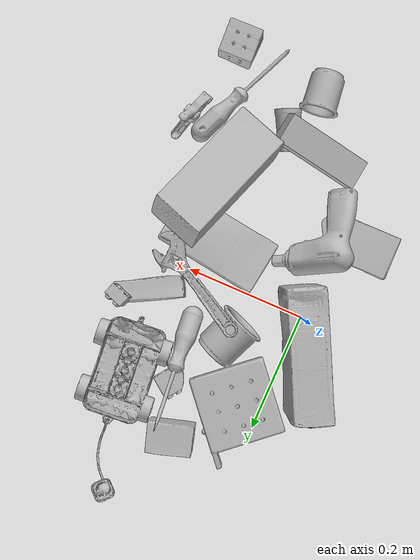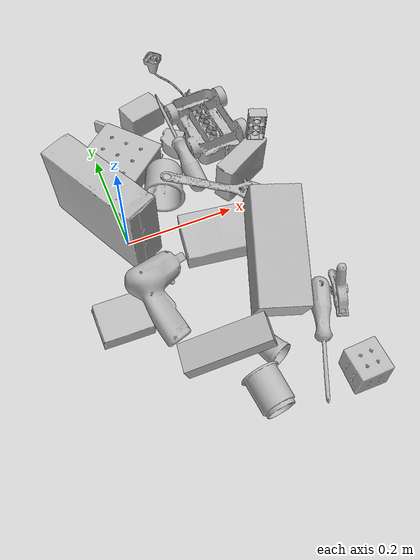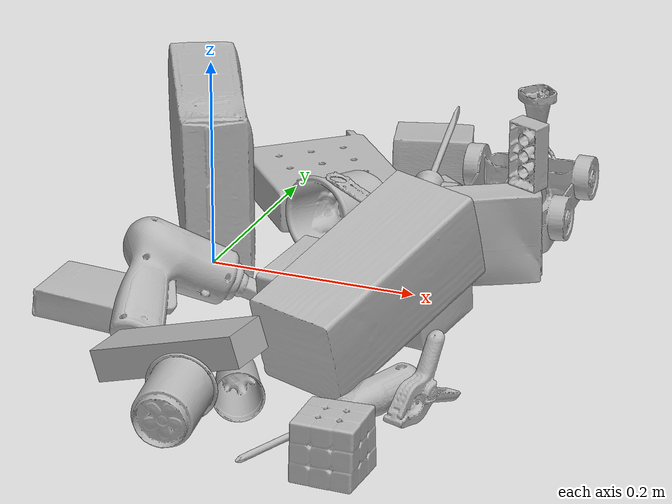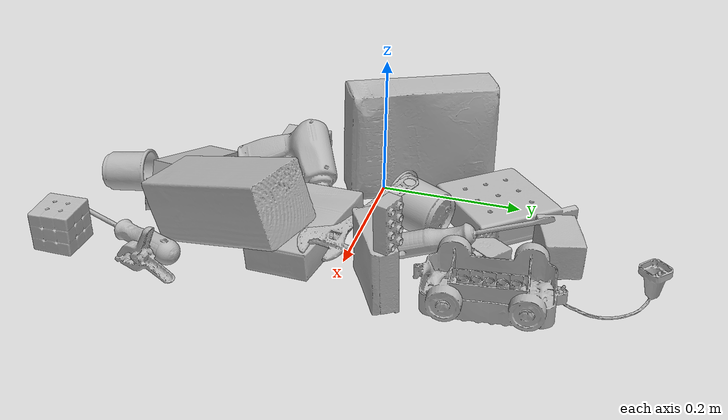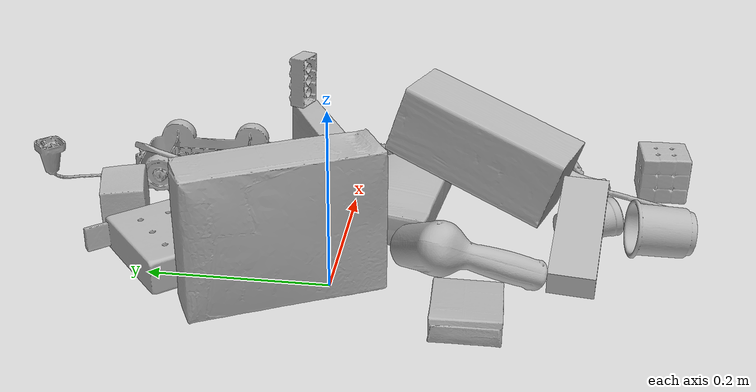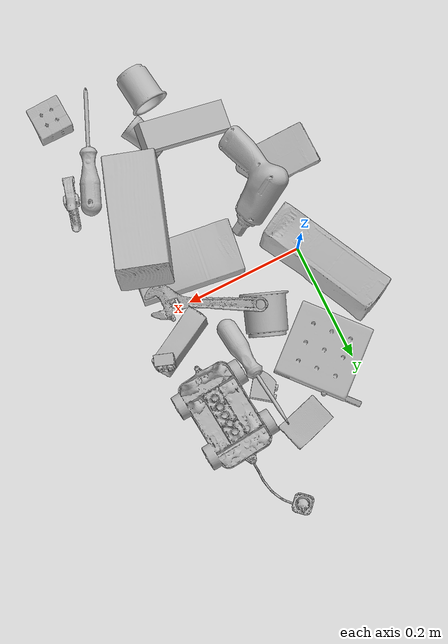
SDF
<sdf version="1.4">
  <world name="default">
    <light name="light1" type="point">
      <pose>0 0 1 0 0 0</pose>
      <diffuse>3 3 3 1</diffuse>
      <specular>3 3 3 1</specular>
    </light>
    <light name="light2" type="point">
      <pose>0 0.5 2 0 0 0</pose>
      <diffuse>1 1 1 1</diffuse>
      <specular>1 1 1 1</specular>
    </light>
    <light name="light3" type="point">
      <pose>0 0.5 2 0 0 0</pose>
      <diffuse>3 3 3 1</diffuse>
      <specular>3 3 3 1</specular>
    </light>
    <scene>
      <ambient>0.7 0.7 0.7</ambient>
    </scene>
    <model name="box21">
      <link name="link_box21">
        <collision name="default">
          <geometry>
            <mesh>
              <uri>model://cracker_box/collision_meshes/collision.obj</uri>
              <scale>1.0 1.0 1.0</scale>
            </mesh>
          </geometry>
          <surface>
            <friction>
              <ode>
                <mu>0.5</mu>
                <mu2>0.5</mu2>
              </ode>
            </friction>
          <contact>
        <ode>
            <max_vel>0</max_vel>
            <min_depth>0.0001</min_depth>
            <kp>1e8</kp>
        </ode>
    </contact></surface>
        </collision>
        <visual name="default">
          <geometry>
            <mesh>
              <uri>model://cracker_box/visual_meshes/visual.dae</uri>
              <scale>1.0 1.0 1.0</scale>
            </mesh>
          </geometry>
        </visual>
        <inertial>
          <mass>2.967785358428955</mass>
          <pose>0.0009464151808060706 0.00025434247800149024 -0.0017029535956680775 -0.0003162076618733006 -0.011106490531610344 0.00254679570085012</pose>
          <inertia>
            <ixx>0.0075487206</ixx>
            <iyy>0.012464421</iyy>
            <izz>0.017787872</izz>
            <ixy>0</ixy>
            <ixz>0</ixz>
            <iyz>0</iyz>
          </inertia>
        </inertial>
      </link>
      <pose>-0.020358022302389145 0.04757203161716461 0.08175767213106155 1.5452339505302555 0.009040542419120785 2.0445908360910106</pose>
    </model>
    <model name="box22">
      <link name="link_box22">
        <collision name="default">
          <geometry>
            <mesh>
              <uri>model://rubiks_cube/collision_meshes/collision.obj</uri>
              <scale>1.0 1.0 1.0</scale>
            </mesh>
          </geometry>
          <surface>
            <friction>
              <ode>
                <mu>0.5</mu>
                <mu2>0.5</mu2>
              </ode>
            </friction>
          <contact>
        <ode>
            <max_vel>0</max_vel>
            <min_depth>0.0001</min_depth>
            <kp>1e8</kp>
        </ode>
    </contact></surface>
        </collision>
        <visual name="default">
          <geometry>
            <mesh>
              <uri>model://rubiks_cube/visual_meshes/visual.dae</uri>
              <scale>1.0 1.0 1.0</scale>
            </mesh>
          </geometry>
        </visual>
        <inertial>
          <mass>0.2631562352180481</mass>
          <pose>2.6721041649580002e-05 5.2569666877388954e-05 -7.264316082000732e-06 -0.05467275409565722 -0.09814109117242276 -0.03445701547045584</pose>
          <inertia>
            <ixx>0.0001454115</ixx>
            <iyy>0.00014473335</iyy>
            <izz>0.00014661645</izz>
            <ixy>0</ixy>
            <ixz>0</ixz>
            <iyz>0</iyz>
          </inertia>
        </inertial>
      </link>
      <pose>0.27060896158218384 -0.37075284123420715 0.028679002076387405 -4.741364642485091e-08 3.701514569864799e-08 1.5955397291484479</pose>
    </model>
    <model name="box23">
      <link name="link_box23">
        <collision name="default">
          <geometry>
            <mesh>
              <uri>model://pudding_box/collision_meshes/collision.obj</uri>
              <scale>1.0 1.0 1.0</scale>
            </mesh>
          </geometry>
          <surface>
            <friction>
              <ode>
                <mu>0.5</mu>
                <mu2>0.5</mu2>
              </ode>
            </friction>
          <contact>
        <ode>
            <max_vel>0</max_vel>
            <min_depth>0.0001</min_depth>
            <kp>1e8</kp>
        </ode>
    </contact></surface>
        </collision>
        <visual name="default">
          <geometry>
            <mesh>
              <uri>model://pudding_box/visual_meshes/visual.dae</uri>
              <scale>1.0 1.0 1.0</scale>
            </mesh>
          </geometry>
        </visual>
        <inertial>
          <mass>0.41353368759155273</mass>
          <pose>0.0004894821904599667 0.0008067885646596551 -0.0005188827635720372 0.005213101814074476 -0.006603797777454713 0.020079821436089117</pose>
          <inertia>
            <ixx>0.0004674785</ixx>
            <iyy>0.00031452288</iyy>
            <izz>0.0006903542</izz>
            <ixy>0</ixy>
            <ixz>0</ixz>
            <iyz>0</iyz>
          </inertia>
        </inertial>
      </link>
      <pose>0.2447509765625 0.055169980973005295 0.04517761245369911 -0.41054114779680817 1.5494220702230426 1.6646821153957279</pose>
    </model>
    <model name="cup1">
      <link name="link_cup1">
        <collision name="default">
          <geometry>
            <mesh>
              <uri>model://cup_small/collision_meshes/collision.obj</uri>
              <scale>1.0 1.0 1.0</scale>
            </mesh>
          </geometry>
          <surface>
            <friction>
              <ode>
                <mu>0.5</mu>
                <mu2>0.5</mu2>
              </ode>
            </friction>
          <contact>
        <ode>
            <max_vel>0</max_vel>
            <min_depth>0.0001</min_depth>
            <kp>1e8</kp>
        </ode>
    </contact></surface>
        </collision>
        <visual name="default">
          <geometry>
            <mesh>
              <uri>model://cup_small/visual_meshes/visual.dae</uri>
              <scale>1.0 1.0 1.0</scale>
            </mesh>
          </geometry>
        </visual>
        <inertial>
          <mass>0.02095564641058445</mass>
          <pose>0.00010482477955520153 -0.0003377848770469427 -0.01074282731860876 -0.011492722259696445 -0.015280529703091471 -0.5058449819350237</pose>
          <inertia>
            <ixx>1.2338362e-05</ixx>
            <iyy>1.240201e-05</iyy>
            <izz>5.5708097e-06</izz>
            <ixy>0</ixy>
            <ixz>0</ixz>
            <iyz>0</iyz>
          </inertia>
        </inertial>
      </link>
      <pose>0.1429527997970581 -0.27405229210853577 0.020000897347927094 1.2393279818991556 1.2949543942364095 0.10800105799107006</pose>
    </model>
    <model name="cup2">
      <link name="link_cup2">
        <collision name="default">
          <geometry>
            <mesh>
              <uri>model://c_cups/collision_meshes/collision.obj</uri>
              <scale>1.0 1.0 1.0</scale>
            </mesh>
          </geometry>
          <surface>
            <friction>
              <ode>
                <mu>0.5</mu>
                <mu2>0.5</mu2>
              </ode>
            </friction>
          <contact>
        <ode>
            <max_vel>0</max_vel>
            <min_depth>0.0001</min_depth>
            <kp>1e8</kp>
        </ode>
    </contact></surface>
        </collision>
        <visual name="default">
          <geometry>
            <mesh>
              <uri>model://c_cups/visual_meshes/visual.dae</uri>
              <scale>1.0 1.0 1.0</scale>
            </mesh>
          </geometry>
        </visual>
        <inertial>
          <mass>0.04905003309249878</mass>
          <pose>0.0007237255922518671 0.0020153908990323544 -0.0012750986497849226 0.30215813246853196 0.013461388587527759 -0.08771773533446486</pose>
          <inertia>
            <ixx>3.6477843e-05</ixx>
            <iyy>3.583322e-05</iyy>
            <izz>3.225985e-05</izz>
            <ixy>0</ixy>
            <ixz>0</ixz>
            <iyz>0</iyz>
          </inertia>
        </inertial>
      </link>
      <pose>0.11462410539388657 -0.352385014295578 0.029974771663546562 -1.4865496331131058 -0.00334805458347858 0.11380775847316538</pose>
    </model>
    <model name="box11">
      <link name="link_box11">
        <collision name="default">
          <geometry>
            <mesh>
              <uri>model://sugar_box/collision_meshes/collision.obj</uri>
              <scale>1.0 1.0 1.0</scale>
            </mesh>
          </geometry>
          <surface>
            <friction>
              <ode>
                <mu>0.5</mu>
                <mu2>0.5</mu2>
              </ode>
            </friction>
          <contact>
        <ode>
            <max_vel>0</max_vel>
            <min_depth>0.0001</min_depth>
            <kp>1e8</kp>
        </ode>
    </contact></surface>
        </collision>
        <visual name="default">
          <geometry>
            <mesh>
              <uri>model://sugar_box/visual_meshes/visual.dae</uri>
              <scale>1.0 1.0 1.0</scale>
            </mesh>
          </geometry>
        </visual>
        <inertial>
          <mass>0.9405714869499207</mass>
          <pose>0.0010343727190047503 3.849109634757042e-05 -0.0003636480832938105 -0.00040462618385709627 0.0010506635220579009 0.0026153790218148127</pose>
          <inertia>
            <ixx>0.0007836817</ixx>
            <iyy>0.0025330195</iyy>
            <izz>0.0030323272</izz>
            <ixy>0</ixy>
            <ixz>0</ixz>
            <iyz>0</iyz>
          </inertia>
        </inertial>
      </link>
      <pose>0.1749272346496582 -0.059647269546985626 0.023236066102981567 -3.0620192466577763 -0.004446284189615398 -0.13500114584572515</pose>
    </model>
    <model name="box12">
      <link name="link_box12">
        <collision name="default">
          <geometry>
            <mesh>
              <uri>model://jenga/collision_meshes/collision.obj</uri>
              <scale>1.0 1.0 1.0</scale>
            </mesh>
          </geometry>
          <surface>
            <friction>
              <ode>
                <mu>0.5</mu>
                <mu2>0.5</mu2>
              </ode>
            </friction>
          <contact>
        <ode>
            <max_vel>0</max_vel>
            <min_depth>0.0001</min_depth>
            <kp>1e8</kp>
        </ode>
    </contact></surface>
        </collision>
        <visual name="default">
          <geometry>
            <mesh>
              <uri>model://jenga/visual_meshes/visual.dae</uri>
              <scale>1.0 1.0 1.0</scale>
            </mesh>
          </geometry>
        </visual>
        <inertial>
          <mass>0.2285791039466858</mass>
          <pose>-2.502855807051674e-07 -0.00010250010382151231 -4.0923405322246253e-05 0.0 -7.342155186052628e-07 0.0</pose>
          <inertia>
            <ixx>6.3253385e-05</ixx>
            <iyy>0.00042860323</iyy>
            <izz>0.00045757034</izz>
            <ixy>0</ixy>
            <ixz>0</ixz>
            <iyz>0</iyz>
          </inertia>
        </inertial>
      </link>
      <pose>0.08117404580116272 -0.2607819437980652 0.03670503571629524 0.006704535855311106 -0.3062282741304633 -0.12774486008037297</pose>
    </model>
    <model name="box13">
      <link name="link_box13">
        <collision name="default">
          <geometry>
            <mesh>
              <uri>model://wood_block/collision_meshes/collision.obj</uri>
              <scale>1.0 1.0 1.0</scale>
            </mesh>
          </geometry>
          <surface>
            <friction>
              <ode>
                <mu>0.5</mu>
                <mu2>0.5</mu2>
              </ode>
            </friction>
          <contact>
        <ode>
            <max_vel>0</max_vel>
            <min_depth>0.0001</min_depth>
            <kp>1e8</kp>
        </ode>
    </contact></surface>
        </collision>
        <visual name="default">
          <geometry>
            <mesh>
              <uri>model://wood_block/visual_meshes/visual.dae</uri>
              <scale>1.0 1.0 1.0</scale>
            </mesh>
          </geometry>
        </visual>
        <inertial>
          <mass>1.608048677444458</mass>
          <pose>-5.813315056002466e-06 -0.000570809468626976 0.0002640858292579651 -0.05220975529066727 -0.005192695547513155 -0.006861377927637377</pose>
          <inertia>
            <ixx>0.002151813</ixx>
            <iyy>0.006797577</iyy>
            <izz>0.0067721503</izz>
            <ixy>0</ixy>
            <ixz>0</ixz>
            <iyz>0</iyz>
          </inertia>
        </inertial>
      </link>
      <pose>0.2169232964515686 -0.15187865495681763 0.07497850805521011 1.6246357076352749 -0.3032669282420072 1.242510265694502</pose>
    </model>
    <model name="box14">
      <link name="link_box14">
        <collision name="default">
          <geometry>
            <mesh>
              <uri>model://gelatin_box/collision_meshes/collision.obj</uri>
              <scale>1.0 1.0 1.0</scale>
            </mesh>
          </geometry>
          <surface>
            <friction>
              <ode>
                <mu>0.5</mu>
                <mu2>0.5</mu2>
              </ode>
            </friction>
          <contact>
        <ode>
            <max_vel>0</max_vel>
            <min_depth>0.0001</min_depth>
            <kp>1e8</kp>
        </ode>
    </contact></surface>
        </collision>
        <visual name="default">
          <geometry>
            <mesh>
              <uri>model://gelatin_box/visual_meshes/visual.dae</uri>
              <scale>1.0 1.0 1.0</scale>
            </mesh>
          </geometry>
        </visual>
        <inertial>
          <mass>0.228233203291893</mass>
          <pose>0.0004319618456065655 0.00011156871914863586 -0.0003640321083366871 -0.0010503721031013481 -0.004755817754301117 0.016440566922732165</pose>
          <inertia>
            <ixx>0.000161114</ixx>
            <iyy>0.0001150829</iyy>
            <izz>0.0002452514</izz>
            <ixy>0</ixy>
            <ixz>0</ixz>
            <iyz>0</iyz>
          </inertia>
        </inertial>
      </link>
      <pose>-0.055217206478118896 -0.14731529355049133 0.015663806349039078 -3.077956795139337 -1.696787932142121e-05 1.5846301546170707</pose>
    </model>
    <model name="cup15">
      <link name="link_cup15">
        <collision name="default">
          <geometry>
            <mesh>
              <uri>model://f_cups/collision_meshes/collision.obj</uri>
              <scale>1.0 1.0 1.0</scale>
            </mesh>
          </geometry>
          <surface>
            <friction>
              <ode>
                <mu>0.5</mu>
                <mu2>0.5</mu2>
              </ode>
            </friction>
          <contact>
        <ode>
            <max_vel>0</max_vel>
            <min_depth>0.0001</min_depth>
            <kp>1e8</kp>
        </ode>
    </contact></surface>
        </collision>
        <visual name="default">
          <geometry>
            <mesh>
              <uri>model://f_cups/visual_meshes/visual.dae</uri>
              <scale>1.0 1.0 1.0</scale>
            </mesh>
          </geometry>
        </visual>
        <inertial>
          <mass>0.05267045274376869</mass>
          <pose>-0.003171468386426568 -0.0006240073125809431 -0.003655537962913513 0.7862325736201227 -0.2607934836260618 -0.18237270236977254</pose>
          <inertia>
            <ixx>4.9511644e-05</ixx>
            <iyy>5.193826e-05</iyy>
            <izz>5.4069198e-05</izz>
            <ixy>0</ixy>
            <ixz>0</ixz>
            <iyz>0</iyz>
          </inertia>
        </inertial>
      </link>
      <pose>0.09824789315462112 0.07674643397331238 0.03710766136646271 -0.4954896438913495 1.4546919470207056 -2.4433086101777284</pose>
    </model>
    <model name="toy1">
      <link name="link_toy1">
        <collision name="default">
          <geometry>
            <mesh>
              <uri>model://g_lego_duplo/collision_meshes/collision.obj</uri>
              <scale>1.0 1.0 1.0</scale>
            </mesh>
          </geometry>
          <surface>
            <friction>
              <ode>
                <mu>0.5</mu>
                <mu2>0.5</mu2>
              </ode>
            </friction>
          <contact>
        <ode>
            <max_vel>0</max_vel>
            <min_depth>0.0001</min_depth>
            <kp>1e8</kp>
        </ode>
    </contact></surface>
        </collision>
        <visual name="default">
          <geometry>
            <mesh>
              <uri>model://g_lego_duplo/visual_meshes/visual.dae</uri>
              <scale>1.0 1.0 1.0</scale>
            </mesh>
          </geometry>
        </visual>
        <inertial>
          <mass>0.5557854771614075</mass>
          <pose>-0.050047677010297775 0.0017554635414853692 0.0038806761149317026 0.01096300832625367 0.038108254431045284 -0.0965302354071939</pose>
          <inertia>
            <ixx>0.0008053398</ixx>
            <iyy>0.0024348022</iyy>
            <izz>0.003046027</izz>
            <ixy>0</ixy>
            <ixz>0</ixz>
            <iyz>0</iyz>
          </inertia>
        </inertial>
      </link>
      <pose>0.22234390676021576 0.2524868845939636 0.027629008516669273 3.1415836699768525 -0.030279198965785806 1.6570749431839622</pose>
    </model>
    <model name="toy2">
      <link name="link_toy2">
        <collision name="default">
          <geometry>
            <mesh>
              <uri>model://b_toy_airplane/collision_meshes/collision.obj</uri>
              <scale>1.0 1.0 1.0</scale>
            </mesh>
          </geometry>
          <surface>
            <friction>
              <ode>
                <mu>0.5</mu>
                <mu2>0.5</mu2>
              </ode>
            </friction>
          <contact>
        <ode>
            <max_vel>0</max_vel>
            <min_depth>0.0001</min_depth>
            <kp>1e8</kp>
        </ode>
    </contact></surface>
        </collision>
        <visual name="default">
          <geometry>
            <mesh>
              <uri>model://b_toy_airplane/visual_meshes/visual.dae</uri>
              <scale>1.0 1.0 1.0</scale>
            </mesh>
          </geometry>
        </visual>
        <inertial>
          <mass>0.5134223699569702</mass>
          <pose>0.00508136348798871 0.004015584941953421 0.009543065913021564 -0.0400181167848636 -0.04022184003740235 -0.5601502230799963</pose>
          <inertia>
            <ixx>0.00095317804</ixx>
            <iyy>0.00038099466</iyy>
            <izz>0.0011858484</izz>
            <ixy>0</ixy>
            <ixz>0</ixz>
            <iyz>0</iyz>
          </inertia>
        </inertial>
      </link>
      <pose>0.005611361935734749 -0.13070592284202576 0.03461705148220062 0.49846953372136793 0.498700925509267 0.5092643808771761</pose>
    </model>
    <model name="toy3">
      <link name="link_toy3">
        <collision name="default">
          <geometry>
            <mesh>
              <uri>model://foam_brick/collision_meshes/collision.obj</uri>
              <scale>1.0 1.0 1.0</scale>
            </mesh>
          </geometry>
          <surface>
            <friction>
              <ode>
                <mu>0.5</mu>
                <mu2>0.5</mu2>
              </ode>
            </friction>
          <contact>
        <ode>
            <max_vel>0</max_vel>
            <min_depth>0.0001</min_depth>
            <kp>1e8</kp>
        </ode>
    </contact></surface>
        </collision>
        <visual name="default">
          <geometry>
            <mesh>
              <uri>model://foam_brick/visual_meshes/visual.dae</uri>
              <scale>1.0 1.0 1.0</scale>
            </mesh>
          </geometry>
        </visual>
        <inertial>
          <mass>0.10737738013267517</mass>
          <pose>-0.0002522472059354186 0.00034584314562380314 -0.0002532101352699101 -0.29401713280371045 0.01727443708188723 -0.0007449863066790336</pose>
          <inertia>
            <ixx>4.6904443e-05</ixx>
            <iyy>7.488536e-05</iyy>
            <izz>7.583706e-05</izz>
            <ixy>0</ixy>
            <ixz>0</ixz>
            <iyz>0</iyz>
          </inertia>
        </inertial>
      </link>
      <pose>0.11900895088911057 0.2639571726322174 0.025497231632471085 3.13253210547488 0.006633465974093177 0.29322741112643047</pose>
    </model>
    <model name="toy4">
      <link name="link_toy4">
        <collision name="default">
          <geometry>
            <mesh>
              <uri>model://c_lego_duplo/collision_meshes/collision.obj</uri>
              <scale>1.0 1.0 1.0</scale>
            </mesh>
          </geometry>
          <surface>
            <friction>
              <ode>
                <mu>0.5</mu>
                <mu2>0.5</mu2>
              </ode>
            </friction>
          <contact>
        <ode>
            <max_vel>0</max_vel>
            <min_depth>0.0001</min_depth>
            <kp>1e8</kp>
        </ode>
    </contact></surface>
        </collision>
        <visual name="default">
          <geometry>
            <mesh>
              <uri>model://c_lego_duplo/visual_meshes/visual.dae</uri>
              <scale>1.0 1.0 1.0</scale>
            </mesh>
          </geometry>
        </visual>
        <inertial>
          <mass>0.0418582409620285</mass>
          <pose>0.00031645974377170205 0.00019464627257548273 0.0010453157592564821 -0.011520806412656213 0.005900100982121691 0.03110035028309464</pose>
          <inertia>
            <ixx>1.6107831e-05</ixx>
            <iyy>5.145423e-06</iyy>
            <izz>1.8823655e-05</izz>
            <ixy>0</ixy>
            <ixz>0</ixz>
            <iyz>0</iyz>
          </inertia>
        </inertial>
      </link>
      <pose>0.282767653465271 0.07979242503643036 0.12238993495702744 1.5543007107695384 -0.000597083688286639 2.797109764879851</pose>
    </model>
    <model name="toy5">
      <link name="link_toy5">
        <collision name="default">
          <geometry>
            <mesh>
              <uri>model://nine_hole_peg_test/collision_meshes/collision.obj</uri>
              <scale>1.0 1.0 1.0</scale>
            </mesh>
          </geometry>
          <surface>
            <friction>
              <ode>
                <mu>0.5</mu>
                <mu2>0.5</mu2>
              </ode>
            </friction>
          <contact>
        <ode>
            <max_vel>0</max_vel>
            <min_depth>0.0001</min_depth>
            <kp>1e8</kp>
        </ode>
    </contact></surface>
        </collision>
        <visual name="default">
          <geometry>
            <mesh>
              <uri>model://nine_hole_peg_test/visual_meshes/visual.dae</uri>
              <scale>1.0 1.0 1.0</scale>
            </mesh>
          </geometry>
        </visual>
        <inertial>
          <mass>0.44585999846458435</mass>
          <pose>-0.004617387428879738 -0.009647615253925323 2.6460689696250483e-05 -0.001466677754783098 0.0007194209279192062 -0.6342398490080472</pose>
          <inertia>
            <ixx>0.0006971755</ixx>
            <iyy>0.0006509454</iyy>
            <izz>0.0012216569</izz>
            <ixy>0</ixy>
            <ixz>0</ixz>
            <iyz>0</iyz>
          </inertia>
        </inertial>
      </link>
      <pose>0.03686187416315079 0.18363142013549805 0.020771006122231483 4.767120511003272e-09 -6.075206797199699e-09 0.7170006660489007</pose>
    </model>
    <model name="toy6">
      <link name="link_toy6">
        <collision name="default">
          <geometry>
            <mesh>
              <uri>model://d_lego_duplo/collision_meshes/collision.obj</uri>
              <scale>1.0 1.0 1.0</scale>
            </mesh>
          </geometry>
          <surface>
            <friction>
              <ode>
                <mu>0.5</mu>
                <mu2>0.5</mu2>
              </ode>
            </friction>
          <contact>
        <ode>
            <max_vel>0</max_vel>
            <min_depth>0.0001</min_depth>
            <kp>1e8</kp>
        </ode>
    </contact></surface>
        </collision>
        <visual name="default">
          <geometry>
            <mesh>
              <uri>model://d_lego_duplo/visual_meshes/visual.dae</uri>
              <scale>1.0 1.0 1.0</scale>
            </mesh>
          </geometry>
        </visual>
        <inertial>
          <mass>0.03287249803543091</mass>
          <pose>0.00283056334592402 0.0001636616507312283 0.000858980929479003 0.08010843587180921 -0.38355193616427774 0.0010296778305230027</pose>
          <inertia>
            <ixx>6.363631e-06</ixx>
            <iyy>9.031719e-06</iyy>
            <izz>8.709827e-06</izz>
            <ixy>0</ixy>
            <ixz>0</ixz>
            <iyz>0</iyz>
          </inertia>
        </inertial>
      </link>
      <pose>0.15131056308746338 0.17964014410972595 0.01638108305633068 -1.5704767164144553 -0.0077599407414737 0.9256966565697381</pose>
    </model>
    <model name="hardware1">
      <link name="link_hardware1">
        <collision name="default">
          <geometry>
            <mesh>
              <uri>model://phillips_screwdriver/collision_meshes/collision.obj</uri>
              <scale>1.0 1.0 1.0</scale>
            </mesh>
          </geometry>
          <surface>
            <friction>
              <ode>
                <mu>0.5</mu>
                <mu2>0.5</mu2>
              </ode>
            </friction>
          <contact>
        <ode>
            <max_vel>0</max_vel>
            <min_depth>0.0001</min_depth>
            <kp>1e8</kp>
        </ode>
    </contact></surface>
        </collision>
        <visual name="default">
          <geometry>
            <mesh>
              <uri>model://phillips_screwdriver/visual_meshes/visual.dae</uri>
              <scale>1.0 1.0 1.0</scale>
            </mesh>
          </geometry>
        </visual>
        <inertial>
          <mass>0.05929635465145111</mass>
          <pose>-0.04777182266116142 0.0010362300090491772 -0.00045555492397397757 -0.15720933335137202 0.005850991845378533 -0.002156742438797471</pose>
          <inertia>
            <ixx>6.9667135e-06</ixx>
            <iyy>8.735042e-05</iyy>
            <izz>8.742465e-05</izz>
            <ixy>0</ixy>
            <ixz>0</ixz>
            <iyz>0</iyz>
          </inertia>
        </inertial>
      </link>
      <pose>0.23745134472846985 -0.2956905663013458 0.014107994735240936 1.4171551689304192 0.032658449703349635 -1.9821101747920624</pose>
    </model>
    <model name="hardware2">
      <link name="link_hardware2">
        <collision name="default">
          <geometry>
            <mesh>
              <uri>model://flat_screwdriver/collision_meshes/collision.obj</uri>
              <scale>1.0 1.0 1.0</scale>
            </mesh>
          </geometry>
          <surface>
            <friction>
              <ode>
                <mu>0.5</mu>
                <mu2>0.5</mu2>
              </ode>
            </friction>
          <contact>
        <ode>
            <max_vel>0</max_vel>
            <min_depth>0.0001</min_depth>
            <kp>1e8</kp>
        </ode>
    </contact></surface>
        </collision>
        <visual name="default">
          <geometry>
            <mesh>
              <uri>model://flat_screwdriver/visual_meshes/visual.dae</uri>
              <scale>1.0 1.0 1.0</scale>
            </mesh>
          </geometry>
        </visual>
        <inertial>
          <mass>0.08023945242166519</mass>
          <pose>-0.0489187017083168 -0.0006576800369657576 -0.000614091579336673 -0.561358306335632 -0.0032337267228942767 0.006982275729110292</pose>
          <inertia>
            <ixx>9.4802335e-06</ixx>
            <iyy>0.00012035375</iyy>
            <izz>0.00012029803</izz>
            <ixy>0</ixy>
            <ixz>0</ixz>
            <iyz>0</iyz>
          </inertia>
        </inertial>
      </link>
      <pose>0.15669243037700653 0.1527988314628601 0.04604444280266762 -1.6395099156450348 -0.3462812206889534 1.6561962610178445</pose>
    </model>
    <model name="hardware3">
      <link name="link_hardware3">
        <collision name="default">
          <geometry>
            <mesh>
              <uri>model://medium_clamp/collision_meshes/collision.obj</uri>
              <scale>1.0 1.0 1.0</scale>
            </mesh>
          </geometry>
          <surface>
            <friction>
              <ode>
                <mu>0.5</mu>
                <mu2>0.5</mu2>
              </ode>
            </friction>
          <contact>
        <ode>
            <max_vel>0</max_vel>
            <min_depth>0.0001</min_depth>
            <kp>1e8</kp>
        </ode>
    </contact></surface>
        </collision>
        <visual name="default">
          <geometry>
            <mesh>
              <uri>model://medium_clamp/visual_meshes/visual.dae</uri>
              <scale>1.0 1.0 1.0</scale>
            </mesh>
          </geometry>
        </visual>
        <inertial>
          <mass>0.025976430624723434</mass>
          <pose>0.0053909942507743835 0.0003953239065594971 -0.0001222159480676055 -0.001226907020768324 0.0025845009771016812 0.038207788380880015</pose>
          <inertia>
            <ixx>7.0769133e-06</ixx>
            <iyy>1.02989125e-05</iyy>
            <izz>1.5863408e-05</izz>
            <ixy>0</ixy>
            <ixz>0</ixz>
            <iyz>0</iyz>
          </inertia>
        </inertial>
      </link>
      <pose>0.2991131842136383 -0.2354813814163208 0.025561267510056496 -1.5937114870077462 0.37734329367271313 -1.8636620217142281</pose>
    </model>
    <model name="hardware4">
      <link name="link_hardware4">
        <collision name="default">
          <geometry>
            <mesh>
              <uri>model://adjustable_wrench/collision_meshes/collision.obj</uri>
              <scale>1.0 1.0 1.0</scale>
            </mesh>
          </geometry>
          <surface>
            <friction>
              <ode>
                <mu>0.5</mu>
                <mu2>0.5</mu2>
              </ode>
            </friction>
          <contact>
        <ode>
            <max_vel>0</max_vel>
            <min_depth>0.0001</min_depth>
            <kp>1e8</kp>
        </ode>
    </contact></surface>
        </collision>
        <visual name="default">
          <geometry>
            <mesh>
              <uri>model://adjustable_wrench/visual_meshes/visual.dae</uri>
              <scale>1.0 1.0 1.0</scale>
            </mesh>
          </geometry>
        </visual>
        <inertial>
          <mass>0.023418840020895004</mass>
          <pose>0.03740980848670006 -0.00289688678458333 -0.0011149229248985648 -0.014473354604289867 0.006656022134877207 -0.010954199158636425</pose>
          <inertia>
            <ixx>4.793005e-06</ixx>
            <iyy>5.609652e-05</iyy>
            <izz>6.0634928e-05</izz>
            <ixy>0</ixy>
            <ixz>0</ixz>
            <iyz>0</iyz>
          </inertia>
        </inertial>
      </link>
      <pose>0.18292589485645294 0.019062574952840805 0.062235381454229355 -0.19857483246949773 0.1404555359659942 -0.5189431897642132</pose>
    </model>
  <physics type="ode">
      <max_contacts>50</max_contacts>
      <ode>
        <solver>
          <type>quick</type>
          <iters>75</iters>
        </solver>
        <constraints>
          <contact_max_correcting_vel>0</contact_max_correcting_vel>
          <contact_surface_layer>0</contact_surface_layer>
        </constraints>
      </ode>
    </physics></world>
</sdf>
